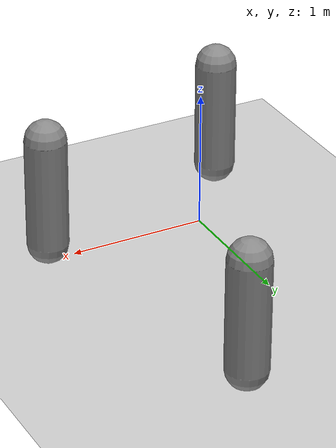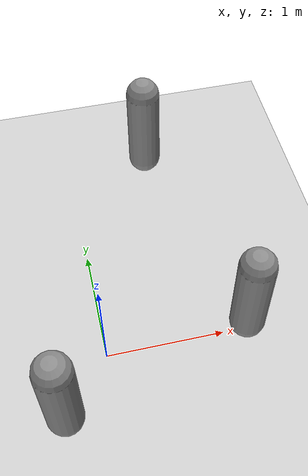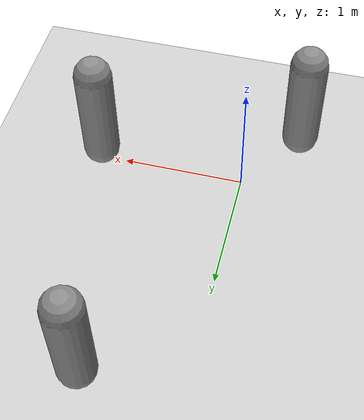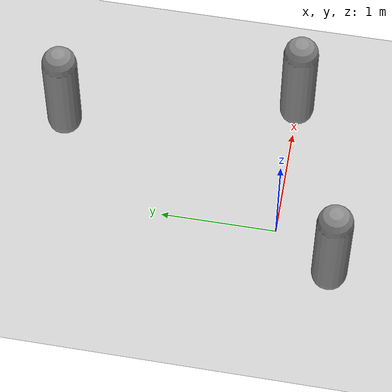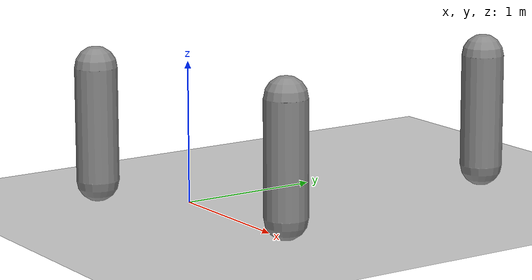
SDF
<?xml version="1.0" ?>
<sdf version="1.7">
  <world name="obstaculos">
    <physics name="1ms" type="ignored">
      <max_step_size>0.001</max_step_size>
      <real_time_factor>1.0</real_time_factor>
    </physics>
    <plugin
      filename="gz-sim-physics-system"
      name="gz::sim::systems::Physics">
    </plugin>
    <plugin
      filename="gz-sim-user-commands-system"
      name="gz::sim::systems::UserCommands">
    </plugin>
    <plugin
      filename="gz-sim-scene-broadcaster-system"
      name="gz::sim::systems::SceneBroadcaster">
    </plugin>
    <plugin
      filename="gz-sim-contact-system"
      name="gz::sim::systems::Contact">
    </plugin>
    <plugin
      filename="gz-sim-sensors-system"
      name="gz::sim::systems::Sensors">
      <render_engine>ogre2</render_engine>
    </plugin>
    <plugin
      filename="gz-sim-imu-system"
      name="gz::sim::systems::Imu">
    </plugin>

    <light type="directional" name="sun">
      <cast_shadows>true</cast_shadows>
      <pose>0 0 10 0 0 0</pose>
      <diffuse>1.0 1.0 1.0 1</diffuse>
      <specular>1.0 1.0 1.0 1</specular>
      <attenuation>
        <range>1000</range>
        <constant>0.9</constant>
        <linear>0.01</linear>
        <quadratic>0.001</quadratic>
      </attenuation>
      <direction>-0.5 0.1 -0.9</direction>
    </light>

    <gravity>0 0 -9.8000000000000007</gravity>
    <magnetic_field>5.5644999999999998e-06 2.2875799999999999e-05 -4.2388400000000002e-05</magnetic_field>
    <atmosphere type='adiabatic'/>
    <scene>
      <ambient>0.400000006 0.400000006 0.400000006 1</ambient>
      <background>0.699999988 0.699999988 0.699999988 1</background>
      <shadows>true</shadows>
    </scene>

    <!-- ===== Terreno plano ===== -->
    <model name="ground_plane">
      <static>true</static>
      <link name="link">
        <collision name="collision">
          <geometry>
            <plane>
              <normal>0 0 1</normal>
              <size>100 100</size>
            </plane>
          </geometry>
          <surface>
            <friction>
              <ode>
                <mu>50</mu>
              </ode>
            </friction>
            <bounce/>
            <contact/>
          </surface>
        </collision>
        <visual name="visual">
          <geometry>
            <plane>
              <normal>0 0 1</normal>
              <size>100 100</size>
            </plane>
          </geometry>
          <material>
            <ambient>0.8 0.8 0.8 1</ambient>
            <diffuse>0.8 0.8 0.8 1</diffuse>
            <specular>0.8 0.8 0.8 1</specular>
          </material>
        </visual>
      </link>
    </model>

    <!-- ===== Cápsula 1 — (-0.4, -0.5) ===== -->
    <model name="capsule_1">
      <static>true</static>
      <pose>-0.4 -0.5 0.55 0 0 0</pose>
      <link name="link">
        <visual name="visual">
          <geometry>
            <capsule>
              <radius>0.15</radius>
              <length>0.8</length>
            </capsule>
          </geometry>
          <material>
            <diffuse>0.55 0.55 0.55 1.0</diffuse>
          </material>
        </visual>
        <collision name="collision">
          <geometry>
            <capsule>
              <radius>0.15</radius>
              <length>0.8</length>
            </capsule>
          </geometry>
        </collision>
      </link>
    </model>

    <!-- ===== Cápsula 2 — (1.2, 0.0) ===== -->
    <model name="capsule_2">
      <static>true</static>
      <pose>1.2 0.0 0.55 0 0 0</pose>
      <link name="link">
        <visual name="visual">
          <geometry>
            <capsule>
              <radius>0.15</radius>
              <length>0.8</length>
            </capsule>
          </geometry>
          <material>
            <diffuse>0.55 0.55 0.55 1.0</diffuse>
          </material>
        </visual>
        <collision name="collision">
          <geometry>
            <capsule>
              <radius>0.15</radius>
              <length>0.8</length>
            </capsule>
          </geometry>
        </collision>
      </link>
    </model>

    <!-- ===== Cápsula 3 — (1.2, 2.0) ===== -->
    <model name="capsule_3">
      <static>true</static>
      <pose>0.75 2.0 0.55 0 0 0</pose>
      <link name="link">
        <visual name="visual">
          <geometry>
            <capsule>
              <radius>0.15</radius>
              <length>0.8</length>
            </capsule>
          </geometry>
          <material>
            <diffuse>0.55 0.55 0.55 1.0</diffuse>
          </material>
        </visual>
        <collision name="collision">
          <geometry>
            <capsule>
              <radius>0.15</radius>
              <length>0.8</length>
            </capsule>
          </geometry>
        </collision>
      </link>
    </model>

  </world>
</sdf>
